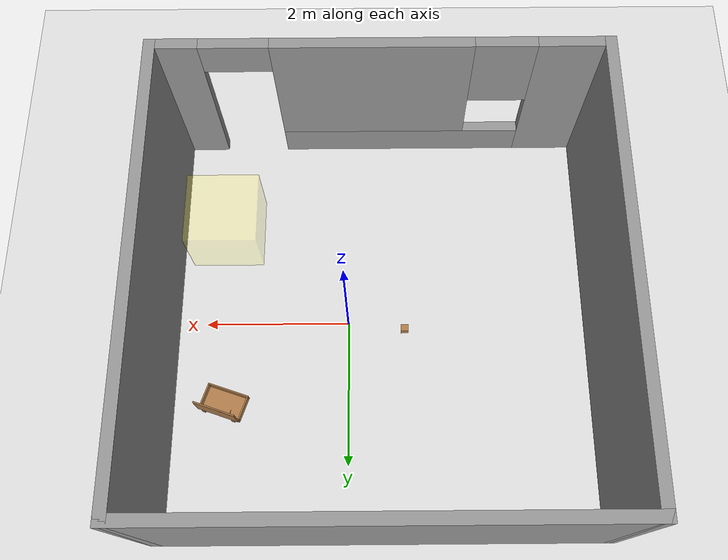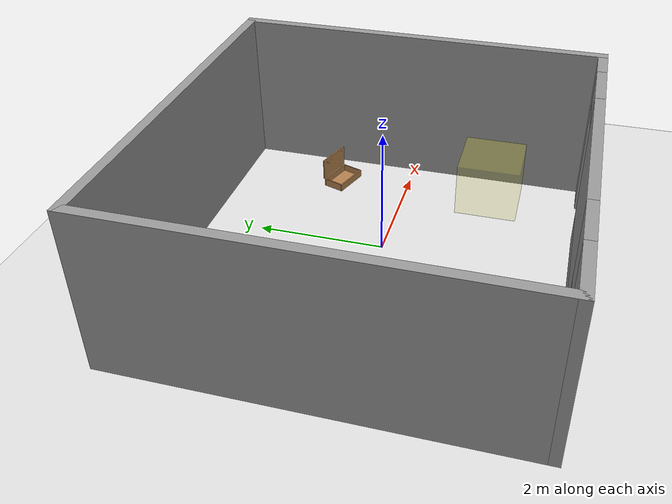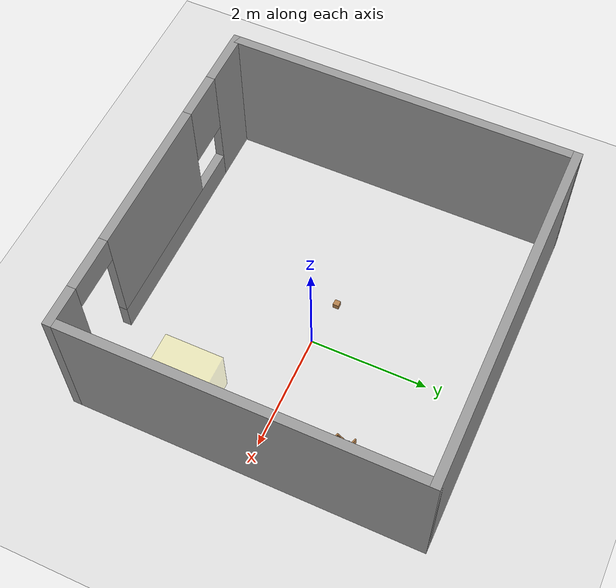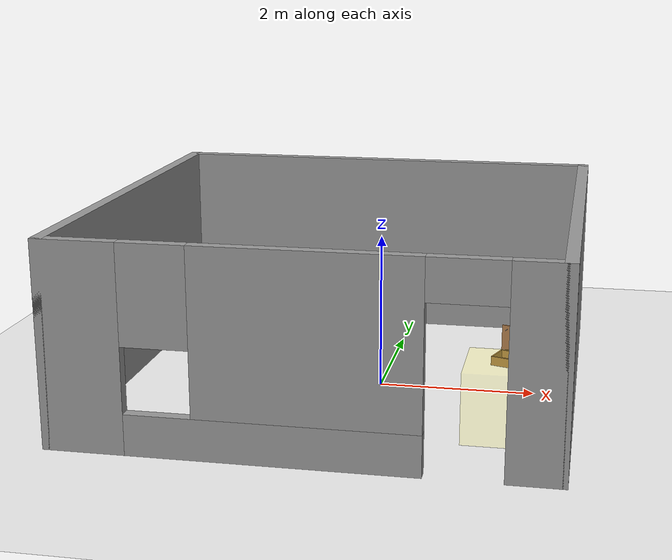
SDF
<sdf version="1.7">
 <world name="default">
  <light name="sun" type="directional">
   <pose>0 0 10 0 -0 0</pose>
   <diffuse>0.8 0.8 0.8 1</diffuse>
   <specular>0.2 0.2 0.2 1</specular>
   <attenuation>
    <range>1000</range>
    <constant>0.9</constant>
    <linear>0.01</linear>
    <quadratic>0.001</quadratic>
   </attenuation>
   <direction>-0.5 0.1 -0.9</direction>
   <spot><inner_angle>0</inner_angle><outer_angle>0</outer_angle><falloff>0</falloff></spot>
  </light>
  <model name="ground_plane">
   <static>1</static>
   <link name="link">
    <collision name="collision">
     <geometry><plane><normal>0 0 1</normal><size>100 100</size></plane></geometry>
     <surface>
      <contact><collide_bitmask>65535</collide_bitmask></contact>
      <friction><ode><mu>100</mu><mu2>50</mu2></ode></friction>
     </surface>
    </collision>
    <visual name="visual">
     <cast_shadows>0</cast_shadows>
     <geometry><plane><normal>0 0 1</normal><size>100 100</size></plane></geometry>
     <material>
      <script><uri>file://media/materials/scripts/gazebo.material</uri><name>Gazebo/Grey</name></script>
     </material>
    </visual>
   </link>
  </model>
  <gravity>0 0 -9.8</gravity>
  <magnetic_field>6e-06 2.3e-05 -4.2e-05</magnetic_field>
  <atmosphere type="adiabatic"/>
  <physics type="ode">
   <max_step_size>0.001</max_step_size>
   <real_time_factor>1</real_time_factor>
   <real_time_update_rate>1000</real_time_update_rate>
  </physics>
  <scene><ambient>0.4 0.4 0.4 1</ambient><background>0.7 0.7 0.7 1</background><shadows>1</shadows></scene>
  <spherical_coordinates>
   <surface_model>EARTH_WGS84</surface_model>
   <latitude_deg>0</latitude_deg>
   <longitude_deg>0</longitude_deg>
   <elevation>0</elevation>
   <heading_deg>0</heading_deg>
  </spherical_coordinates>
  <model name="myWorld">
   <pose>-0.465 0.015 0 0 -0 0</pose>
   <link name="Wall_10">
    <collision name="Wall_10_Collision">
     <geometry><box><size>6 0.15 2.5</size></box></geometry>
     <pose>0 0 1.25 0 -0 0</pose>
    </collision>
    <visual name="Wall_10_Visual">
     <pose>0 0 1.25 0 -0 0</pose>
     <geometry><box><size>6 0.15 2.5</size></box></geometry>
     <material>
      <script><uri>file://media/materials/scripts/gazebo.material</uri><name>Gazebo/Grey</name></script>
      <ambient>1 1 1 1</ambient>
     </material>
     <meta><layer>0</layer></meta>
    </visual>
    <pose>0 2.925 0 0 -0 0</pose>
   </link>
   <link name="Wall_11">
    <collision name="Wall_11_Collision">
     <geometry><box><size>6 0.15 2.5</size></box></geometry>
     <pose>0 0 1.25 0 -0 0</pose>
    </collision>
    <visual name="Wall_11_Visual">
     <pose>0 0 1.25 0 -0 0</pose>
     <geometry><box><size>6 0.15 2.5</size></box></geometry>
     <material>
      <script><uri>file://media/materials/scripts/gazebo.material</uri><name>Gazebo/Grey</name></script>
      <ambient>1 1 1 1</ambient>
     </material>
     <meta><layer>0</layer></meta>
    </visual>
    <pose>2.925 -0 0 0 -0 -1.5708</pose>
   </link>
   <link name="Wall_2">
    <pose>0 -2.925 0 0 -0 0</pose>
    <visual name="Wall_2_Visual_0">
     <pose>-2.5025 0 1.25 0 -0 0</pose>
     <geometry><box><size>0.995 0.15 2.5</size></box></geometry>
     <material>
      <script><uri>file://media/materials/scripts/gazebo.material</uri><name>Gazebo/Grey</name></script>
      <ambient>1 1 1 1</ambient>
     </material>
     <meta><layer>0</layer></meta>
    </visual>
    <collision name="Wall_2_Collision_0">
     <geometry><box><size>0.995 0.15 2.5</size></box></geometry>
     <pose>-2.5025 0 1.25 0 -0 0</pose>
    </collision>
    <visual name="Wall_2_Visual_1">
     <pose>2.6575 0 1.25 0 -0 0</pose>
     <geometry><box><size>0.685 0.15 2.5</size></box></geometry>
     <material>
      <script><uri>file://media/materials/scripts/gazebo.material</uri><name>Gazebo/Grey</name></script>
      <ambient>1 1 1 1</ambient>
     </material>
     <meta><layer>0</layer></meta>
    </visual>
    <collision name="Wall_2_Collision_1">
     <geometry><box><size>0.685 0.15 2.5</size></box></geometry>
     <pose>2.6575 0 1.25 0 -0 0</pose>
    </collision>
    <visual name="Wall_2_Visual_2">
     <pose>-0.295 0 0.25 0 -0 0</pose>
     <geometry><box><size>3.42 0.15 0.5</size></box></geometry>
     <material>
      <script><uri>file://media/materials/scripts/gazebo.material</uri><name>Gazebo/Grey</name></script>
      <ambient>1 1 1 1</ambient>
     </material>
     <meta><layer>0</layer></meta>
    </visual>
    <collision name="Wall_2_Collision_2">
     <geometry><box><size>3.42 0.15 0.5</size></box></geometry>
     <pose>-0.295 0 0.25 0 -0 0</pose>
    </collision>
    <visual name="Wall_2_Visual_3">
     <pose>0.105 0 1.5 0 -0 0</pose>
     <geometry><box><size>2.62 0.15 2</size></box></geometry>
     <material>
      <script><uri>file://media/materials/scripts/gazebo.material</uri><name>Gazebo/Grey</name></script>
      <ambient>1 1 1 1</ambient>
     </material>
     <meta><layer>0</layer></meta>
    </visual>
    <collision name="Wall_2_Collision_3">
     <geometry><box><size>2.62 0.15 2</size></box></geometry>
     <pose>0.105 0 1.5 0 -0 0</pose>
    </collision>
    <visual name="Wall_2_Visual_4">
     <pose>-1.605 0 1.9 0 -0 0</pose>
     <geometry><box><size>0.8 0.15 1.2</size></box></geometry>
     <material>
      <script><uri>file://media/materials/scripts/gazebo.material</uri><name>Gazebo/Grey</name></script>
      <ambient>1 1 1 1</ambient>
     </material>
     <meta><layer>0</layer></meta>
    </visual>
    <collision name="Wall_2_Collision_4">
     <geometry><box><size>0.8 0.15 1.2</size></box></geometry>
     <pose>-1.605 0 1.9 0 -0 0</pose>
    </collision>
    <visual name="Wall_2_Visual_5">
     <pose>1.865 0 2.25 0 -0 0</pose>
     <geometry><box><size>0.9 0.15 0.5</size></box></geometry>
     <material>
      <script><uri>file://media/materials/scripts/gazebo.material</uri><name>Gazebo/Grey</name></script>
      <ambient>1 1 1 1</ambient>
     </material>
     <meta><layer>0</layer></meta>
    </visual>
    <collision name="Wall_2_Collision_5">
     <geometry><box><size>0.9 0.15 0.5</size></box></geometry>
     <pose>1.865 0 2.25 0 -0 0</pose>
    </collision>
   </link>
   <link name="Wall_5">
    <collision name="Wall_5_Collision">
     <geometry><box><size>6 0.15 2.5</size></box></geometry>
     <pose>0 0 1.25 0 -0 0</pose>
    </collision>
    <visual name="Wall_5_Visual">
     <pose>0 0 1.25 0 -0 0</pose>
     <geometry><box><size>6 0.15 2.5</size></box></geometry>
     <material>
      <script><uri>file://media/materials/scripts/gazebo.material</uri><name>Gazebo/Grey</name></script>
      <ambient>1 1 1 1</ambient>
     </material>
     <meta><layer>0</layer></meta>
    </visual>
    <pose>-2.925 -0 0 0 -0 1.5708</pose>
   </link>
   <static>1</static>
  </model>
  <model name="wood_cube_10cm">
   <link name="link">
    <pose>0 0 0.05 0 -0 0</pose>
    <inertial>
     <mass>0.5167</mass>
     <inertia>
      <ixx>0.000861167</ixx>
      <ixy>0</ixy>
      <ixz>0</ixz>
      <iyy>0.000861167</iyy>
      <iyz>0</iyz>
      <izz>0.000861167</izz>
     </inertia>
    </inertial>
    <collision name="collision">
     <geometry><box><size>0.1 0.1 0.1</size></box></geometry>
     <surface>
      <contact>
       <poissons_ratio>0.347</poissons_ratio>
       <elastic_modulus>8.8e+09</elastic_modulus>
       <ode><kp>100000</kp><kd>100</kd><max_vel>100</max_vel><min_depth>0.001</min_depth></ode>
      </contact>
      <friction>
       <torsional>
        <coefficient>1</coefficient>
        <use_patch_radius>0</use_patch_radius>
        <surface_radius>0.01</surface_radius>
       </torsional>
      </friction>
     </surface>
    </collision>
    <visual name="visual">
     <geometry><box><size>0.1 0.1 0.1</size></box></geometry>
     <material>
      <script><uri>file://media/materials/scripts/gazebo.material</uri><name>Gazebo/Wood</name></script>
     </material>
    </visual>
   </link>
   <pose>-0.78262 0.091369 -0.001013 0 -0 0</pose>
  </model>
  <model name="wooden_case_metal_peg">
   <frame name="wooden_case::__model__" attached_to="wooden_case::base">
    <pose relative_to="__model__">0 0 0 0 -0 0</pose>
   </frame>
   <link name="wooden_case::base">
    <pose relative_to="wooden_case::__model__">0 0 0.024 0 -0 0</pose>
    <inertial>
     <pose>-0.022184 0 0.171592 0 -0 0</pose>
     <mass>3.96264</mass>
     <inertia>
      <ixx>0.213536</ixx>
      <ixy>0</ixy>
      <ixz>0.000779377</ixz>
      <iyy>0.0708943</iyy>
      <iyz>0</iyz>
      <izz>0.154604</izz>
     </inertia>
    </inertial>
    <collision name="collision_back">
     <pose>-0.053975 0 0.1778 0 -0 0</pose>
     <geometry><box><size>0.01905 0.5461 0.3175</size></box></geometry>
     <surface>
      <contact>
       <poissons_ratio>0.347</poissons_ratio>
       <elastic_modulus>8.8e+09</elastic_modulus>
       <ode><kp>100000</kp><kd>100</kd><max_vel>100</max_vel><min_depth>0.001</min_depth></ode>
      </contact>
      <friction>
       <torsional>
        <coefficient>1</coefficient>
        <use_patch_radius>0</use_patch_radius>
        <surface_radius>0.01</surface_radius>
       </torsional>
      </friction>
     </surface>
    </collision>
    <visual name="visual_back">
     <pose>-0.053975 0 0.1778 0 -0 0</pose>
     <geometry><box><size>0.01905 0.5461 0.3175</size></box></geometry>
     <material>
      <script><uri>file://media/materials/scripts/gazebo.material</uri><name>Gazebo/Wood</name></script>
     </material>
    </visual>
    <collision name="collision_bottom">
     <pose>0 0 0.009525 0 -0 0</pose>
     <geometry><box><size>0.127 0.5842 0.01905</size></box></geometry>
     <surface>
      <contact>
       <poissons_ratio>0.347</poissons_ratio>
       <elastic_modulus>8.8e+09</elastic_modulus>
       <ode><kp>100000</kp><kd>100</kd><max_vel>100</max_vel><min_depth>0.001</min_depth></ode>
      </contact>
      <friction>
       <torsional>
        <coefficient>1</coefficient>
        <use_patch_radius>0</use_patch_radius>
        <surface_radius>0.01</surface_radius>
       </torsional>
      </friction>
     </surface>
    </collision>
    <visual name="visual_bottom">
     <pose>0 0 0.009525 0 -0 0</pose>
     <geometry><box><size>0.127 0.5842 0.01905</size></box></geometry>
     <material>
      <script><uri>file://media/materials/scripts/gazebo.material</uri><name>Gazebo/Wood</name></script>
     </material>
    </visual>
    <collision name="collision_top">
     <pose>0 0 0.346075 0 -0 0</pose>
     <geometry><box><size>0.127 0.5842 0.01905</size></box></geometry>
     <surface>
      <contact>
       <poissons_ratio>0.347</poissons_ratio>
       <elastic_modulus>8.8e+09</elastic_modulus>
       <ode><kp>100000</kp><kd>100</kd><max_vel>100</max_vel><min_depth>0.001</min_depth></ode>
      </contact>
      <friction>
       <torsional>
        <coefficient>1</coefficient>
        <use_patch_radius>0</use_patch_radius>
        <surface_radius>0.01</surface_radius>
       </torsional>
      </friction>
     </surface>
    </collision>
    <visual name="visual_top">
     <pose>0 0 0.346075 0 -0 0</pose>
     <geometry><box><size>0.127 0.5842 0.01905</size></box></geometry>
     <material>
      <script><uri>file://media/materials/scripts/gazebo.material</uri><name>Gazebo/Wood</name></script>
     </material>
    </visual>
    <collision name="collision_left">
     <pose>0 -0.282575 0.1778 0 -0 0</pose>
     <geometry><box><size>0.127 0.01905 0.3175</size></box></geometry>
     <surface>
      <contact>
       <poissons_ratio>0.347</poissons_ratio>
       <elastic_modulus>8.8e+09</elastic_modulus>
       <ode><kp>100000</kp><kd>100</kd><max_vel>100</max_vel><min_depth>0.001</min_depth></ode>
      </contact>
      <friction>
       <torsional>
        <coefficient>1</coefficient>
        <use_patch_radius>0</use_patch_radius>
        <surface_radius>0.01</surface_radius>
       </torsional>
      </friction>
     </surface>
    </collision>
    <visual name="visual_left">
     <pose>0 -0.282575 0.1778 0 -0 0</pose>
     <geometry><box><size>0.127 0.01905 0.3175</size></box></geometry>
     <material>
      <script><uri>file://media/materials/scripts/gazebo.material</uri><name>Gazebo/Wood</name></script>
     </material>
    </visual>
    <collision name="collision_right">
     <pose>0 0.282575 0.1778 0 -0 0</pose>
     <geometry><box><size>0.127 0.01905 0.3175</size></box></geometry>
     <surface>
      <contact>
       <poissons_ratio>0.347</poissons_ratio>
       <elastic_modulus>8.8e+09</elastic_modulus>
       <ode><kp>100000</kp><kd>100</kd><max_vel>100</max_vel><min_depth>0.001</min_depth></ode>
      </contact>
      <friction>
       <torsional>
        <coefficient>1</coefficient>
        <use_patch_radius>0</use_patch_radius>
        <surface_radius>0.01</surface_radius>
       </torsional>
      </friction>
     </surface>
    </collision>
    <visual name="visual_right">
     <pose>0 0.282575 0.1778 0 -0 0</pose>
     <geometry><box><size>0.127 0.01905 0.3175</size></box></geometry>
     <material>
      <script><uri>file://media/materials/scripts/gazebo.material</uri><name>Gazebo/Wood</name></script>
     </material>
    </visual>
    <collision name="collision_block_left">
     <pose>0.0095 -0.2151 -0.012 0 -0 0</pose>
     <geometry><box><size>0.108 0.05 0.024</size></box></geometry>
     <surface>
      <contact>
       <poissons_ratio>0.347</poissons_ratio>
       <elastic_modulus>8.8e+09</elastic_modulus>
       <ode><kp>100000</kp><kd>100</kd><max_vel>100</max_vel><min_depth>0.001</min_depth></ode>
      </contact>
      <friction>
       <torsional>
        <coefficient>1</coefficient>
        <use_patch_radius>0</use_patch_radius>
        <surface_radius>0.01</surface_radius>
       </torsional>
      </friction>
     </surface>
    </collision>
    <visual name="visual_block_left">
     <pose>0.0095 -0.2151 -0.012 0 -0 0</pose>
     <geometry><box><size>0.108 0.05 0.024</size></box></geometry>
     <material>
      <script><uri>file://media/materials/scripts/gazebo.material</uri><name>Gazebo/Wood</name></script>
     </material>
    </visual>
    <collision name="collision_block_right">
     <pose>0.0095 0.2151 -0.012 0 -0 0</pose>
     <geometry><box><size>0.108 0.05 0.024</size></box></geometry>
     <surface>
      <contact>
       <poissons_ratio>0.347</poissons_ratio>
       <elastic_modulus>8.8e+09</elastic_modulus>
       <ode><kp>100000</kp><kd>100</kd><max_vel>100</max_vel><min_depth>0.001</min_depth></ode>
      </contact>
      <friction>
       <torsional>
        <coefficient>1</coefficient>
        <use_patch_radius>0</use_patch_radius>
        <surface_radius>0.01</surface_radius>
       </torsional>
      </friction>
     </surface>
    </collision>
    <visual name="visual_block_right">
     <pose>0.0095 0.2151 -0.012 0 -0 0</pose>
     <geometry><box><size>0.108 0.05 0.024</size></box></geometry>
     <material>
      <script><uri>file://media/materials/scripts/gazebo.material</uri><name>Gazebo/Wood</name></script>
     </material>
    </visual>
   </link>
   <link name="wooden_case::lid">
    <pose relative_to="wooden_case::__model__">0.243775 0 0.009525 0 -0 0</pose>
    <inertial>
     <mass>1.97874</mass>
     <inertia>
      <ixx>0.0563367</ixx>
      <ixy>0</ixy>
      <ixz>0</ixz>
      <iyy>0.020911</iyy>
      <iyz>0</iyz>
      <izz>0.0771281</izz>
     </inertia>
    </inertial>
    <collision name="collision">
     <geometry><box><size>0.3556 0.5842 0.01905</size></box></geometry>
     <surface>
      <contact>
       <poissons_ratio>0.347</poissons_ratio>
       <elastic_modulus>8.8e+09</elastic_modulus>
       <ode><kp>100000</kp><kd>100</kd><max_vel>100</max_vel><min_depth>0.001</min_depth></ode>
      </contact>
      <friction>
       <torsional>
        <coefficient>1</coefficient>
        <use_patch_radius>0</use_patch_radius>
        <surface_radius>0.01</surface_radius>
       </torsional>
      </friction>
     </surface>
    </collision>
    <visual name="visual">
     <geometry><box><size>0.3556 0.5842 0.01905</size></box></geometry>
     <material>
      <script><uri>file://media/materials/scripts/gazebo.material</uri><name>Gazebo/Wood</name></script>
     </material>
    </visual>
    <visual name="tee_nut_1">
     <pose>0.122 -0.216 0 0 -0 0</pose>
     <geometry><cylinder><radius>0.00635</radius><length>0.0192405</length></cylinder></geometry>
     <material>
      <script><uri>file://media/materials/scripts/gazebo.material</uri><name>Gazebo/Grey</name></script>
     </material>
    </visual>
    <visual name="tee_nut_2">
     <pose>0.122 -0.088 0 0 -0 0</pose>
     <geometry><cylinder><radius>0.00635</radius><length>0.0192405</length></cylinder></geometry>
     <material>
      <script><uri>file://media/materials/scripts/gazebo.material</uri><name>Gazebo/Grey</name></script>
     </material>
    </visual>
    <visual name="tee_nut_3">
     <pose>0.122 0.088 0 0 -0 0</pose>
     <geometry><cylinder><radius>0.00635</radius><length>0.0192405</length></cylinder></geometry>
     <material>
      <script><uri>file://media/materials/scripts/gazebo.material</uri><name>Gazebo/Grey</name></script>
     </material>
    </visual>
    <visual name="tee_nut_4">
     <pose>0.122 0.216 0 0 -0 0</pose>
     <geometry><cylinder><radius>0.00635</radius><length>0.0192405</length></cylinder></geometry>
     <material>
      <script><uri>file://media/materials/scripts/gazebo.material</uri><name>Gazebo/Grey</name></script>
     </material>
    </visual>
   </link>
   <joint name="wooden_case::lid_hinge" type="revolute">
    <pose>-0.1778 0 0.01905 0 -0 0</pose>
    <parent>wooden_case::base</parent>
    <child>wooden_case::lid</child>
    <axis>
     <xyz>0 1 0</xyz>
     <limit><upper>0.523599</upper><lower>-1.5708</lower></limit>
     <dynamics><spring_reference>0</spring_reference><spring_stiffness>0</spring_stiffness></dynamics>
    </axis>
   </joint>
   <frame name="peg::__model__" attached_to="peg::link">
    <pose relative_to="__model__">0.365774 0.216 0.01905 0 -0 0</pose>
   </frame>
   <link name="peg::link">
    <pose relative_to="peg::__model__">0 0 0.031 0 -0 0</pose>
    <inertial>
     <mass>0.0121</mass>
     <inertia>
      <ixx>3.90898e-06</ixx>
      <ixy>0</ixy>
      <ixz>0</ixz>
      <iyy>3.90898e-06</iyy>
      <iyz>0</iyz>
      <izz>6.58845e-08</izz>
     </inertia>
    </inertial>
    <collision name="collision">
     <geometry><cylinder><radius>0.0033</radius><length>0.062</length></cylinder></geometry>
     <surface>
      <contact>
       <poissons_ratio>0.305</poissons_ratio>
       <elastic_modulus>2e+11</elastic_modulus>
       <ode><kp>100000</kp><kd>100</kd><max_vel>100</max_vel><min_depth>0.001</min_depth></ode>
      </contact>
      <friction>
       <torsional>
        <coefficient>1</coefficient>
        <use_patch_radius>0</use_patch_radius>
        <surface_radius>0.01</surface_radius>
       </torsional>
      </friction>
     </surface>
    </collision>
    <visual name="visual">
     <geometry><cylinder><radius>0.0033</radius><length>0.062</length></cylinder></geometry>
     <material>
      <script><uri>file://media/materials/scripts/gazebo.material</uri><name>Gazebo/Grey</name></script>
     </material>
    </visual>
   </link>
   <joint name="case_peg" type="revolute">
    <child>peg::link</child>
    <parent>wooden_case::lid</parent>
    <axis>
     <xyz>0 0 1</xyz>
     <limit><upper>0</upper><lower>0</lower></limit>
     <dynamics><spring_reference>0</spring_reference><spring_stiffness>0</spring_stiffness></dynamics>
    </axis>
   </joint>
   <pose>1.76086 1.32877 0.06247 -0.060912 -1.57079 1.30116</pose>
  </model>
  <model name="RegionEventBox">
   <static>1</static>
   <pose>1.74761 -1.41855 0 0 -0 0</pose>
   <link name="link">
    <visual name="visual">
     <transparency>0.75</transparency>
     <geometry><box><size>1 1 1.75</size></box></geometry>
     <material>
      <script><uri>file://media/materials/scripts/gazebo.material</uri><name>Gazebo/Yellow</name></script>
     </material>
    </visual>
   </link>
   <plugin name="region_event_box" filename="libRegionEventBoxPlugin.so">
    <event><name>model_in_region_event_box</name><type>inclusion</type><active>1</active></event>
   </plugin>
  </model>
 </world>
</sdf>
